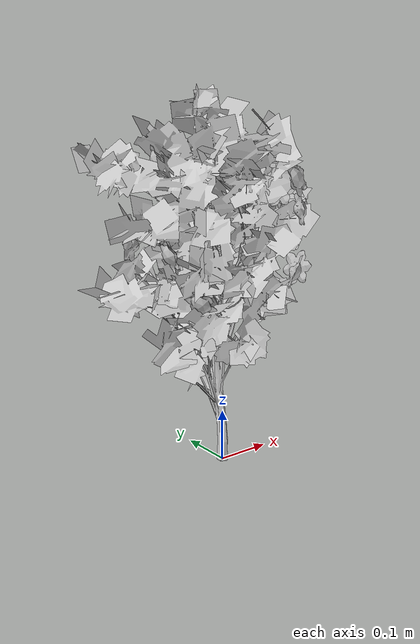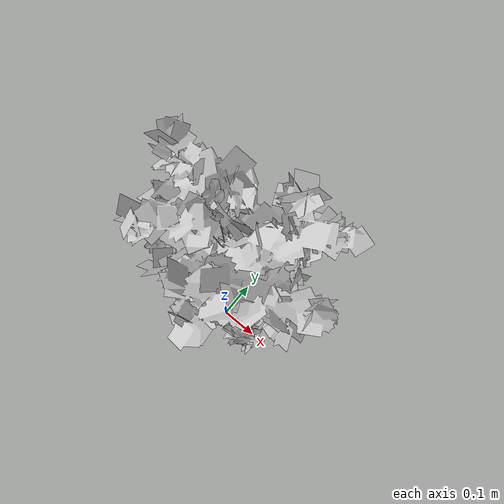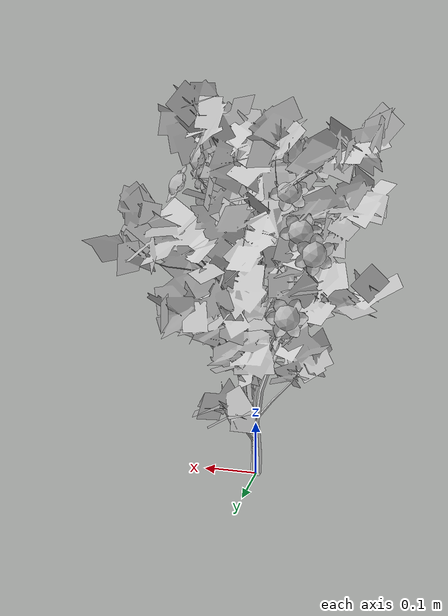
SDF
<?xml version="1.0" ?>
<sdf version="1.6">
  <model name="tree-flowers">
    <!--Skew-Seed:1404525270-->
    <static>true</static>
    <link name="link"/>
    <include>
      <uri>model://tree-mesh</uri>
      <pose>0 0 0 0 0 0</pose>
    </include>
    <joint name="tree_joint" type="fixed">
      <child>tree-mesh::link</child>
      <parent>link</parent>
    </joint>
    <include>
      <name>bramble_0</name>
      <uri>model://bramble</uri>
      <pose> -0.07617848541616994 0.0865904384621728 0.5920966780651129 -2.9251056812645944 1.2553467380782513 0.0</pose>
    </include>
    <joint name="flower_joint_0" type="fixed">
      <child>bramble_0::flower_link</child>
      <parent>link</parent>
    </joint>
    <include>
      <name>bramble_1</name>
      <uri>model://bramble</uri>
      <pose> 0.09458099205756204 -0.03976100906300201 0.5343500792114309 -0.20012890288490015 2.117605020189393 0.0</pose>
    </include>
    <joint name="flower_joint_1" type="fixed">
      <child>bramble_1::flower_link</child>
      <parent>link</parent>
    </joint>
    <include>
      <name>bramble_2</name>
      <uri>model://bramble</uri>
      <pose> 0.11022438083590702 -0.07235021659724623 0.4986998895123038 0.43509835049477374 1.4533730872471131 0.0</pose>
    </include>
    <joint name="flower_joint_2" type="fixed">
      <child>bramble_2::flower_link</child>
      <parent>link</parent>
    </joint>
    <include>
      <name>bramble_3</name>
      <uri>model://bramble</uri>
      <pose> 0.10775524854231835 -0.0654566679356677 0.5554203105590652 0.9334977666668114 0.8292664119905093 0.0</pose>
    </include>
    <joint name="flower_joint_3" type="fixed">
      <child>bramble_3::flower_link</child>
      <parent>link</parent>
    </joint>
    <include>
      <name>bramble_4</name>
      <uri>model://bramble</uri>
      <pose> -0.05622106638442294 -0.0481428354620802 0.41623028423168607 -3.285390076243852 0.9002269312930437 0.0</pose>
    </include>
    <joint name="flower_joint_4" type="fixed">
      <child>bramble_4::flower_link</child>
      <parent>link</parent>
    </joint>
    <include>
      <name>bramble_5</name>
      <uri>model://bramble</uri>
      <pose> 0.10957159504689981 0.08588202358920526 0.46777151172057474 -0.3783600860361569 1.4586939346460615 0.0</pose>
    </include>
    <joint name="flower_joint_5" type="fixed">
      <child>bramble_5::flower_link</child>
      <parent>link</parent>
    </joint>
    <include>
      <name>bramble_6</name>
      <uri>model://bramble</uri>
      <pose> -0.07171513600513273 0.061100485185627 0.5255450691895085 -1.7910503683661874 2.2462306390648887 0.0</pose>
    </include>
    <joint name="flower_joint_6" type="fixed">
      <child>bramble_6::flower_link</child>
      <parent>link</parent>
    </joint>
    <include>
      <name>bramble_7</name>
      <uri>model://bramble</uri>
      <pose> -0.13864242114855563 -0.03297383988090575 0.45843463378102844 -3.0225935761778913 1.2904479472157429 0.0</pose>
    </include>
    <joint name="flower_joint_7" type="fixed">
      <child>bramble_7::flower_link</child>
      <parent>link</parent>
    </joint>
    <include>
      <name>bramble_8</name>
      <uri>model://bramble</uri>
      <pose> 0.060943577512552485 0.1125989872093741 0.576288180844873 -0.48230398636008176 1.3249246606733536 0.0</pose>
    </include>
    <joint name="flower_joint_8" type="fixed">
      <child>bramble_8::flower_link</child>
      <parent>link</parent>
    </joint>
    <include>
      <name>bramble_9</name>
      <uri>model://bramble</uri>
      <pose> 0.07161327426921314 0.09659314949213085 0.32647283752206696 -1.0868372155627983 1.7671746534415274 0.0</pose>
    </include>
    <joint name="flower_joint_9" type="fixed">
      <child>bramble_9::flower_link</child>
      <parent>link</parent>
    </joint>
    <include>
      <name>bramble_10</name>
      <uri>model://bramble</uri>
      <pose> 0.11944397238408075 -0.05920477961931357 0.3805944065576238 -0.13677259246252582 1.9373553387013618 0.0</pose>
    </include>
    <joint name="flower_joint_10" type="fixed">
      <child>bramble_10::flower_link</child>
      <parent>link</parent>
    </joint>
    <include>
      <name>bramble_11</name>
      <uri>model://bramble</uri>
      <pose> 0.06273309308538436 -0.03548898442722637 0.3726791355445811 1.1766412203815704 1.8530253079851928 0.0</pose>
    </include>
    <joint name="flower_joint_11" type="fixed">
      <child>bramble_11::flower_link</child>
      <parent>link</parent>
    </joint>
    <include>
      <name>bramble_12</name>
      <uri>model://bramble</uri>
      <pose> -0.07975629727029043 0.11993371440934059 0.3262506482243923 -1.8007066611637779 2.0320060180763515 0.0</pose>
    </include>
    <joint name="flower_joint_12" type="fixed">
      <child>bramble_12::flower_link</child>
      <parent>link</parent>
    </joint>
    <include>
      <name>bramble_13</name>
      <uri>model://bramble</uri>
      <pose> 0.11679083990281908 -0.055511842833949235 0.37505611230968355 0.7665419996359921 2.0682763191089366 0.0</pose>
    </include>
    <joint name="flower_joint_13" type="fixed">
      <child>bramble_13::flower_link</child>
      <parent>link</parent>
    </joint>
    <include>
      <name>bramble_14</name>
      <uri>model://bramble</uri>
      <pose> -0.07482700729868087 -0.03612064803243073 0.35379246256695646 -3.516253747694787 1.0660336421576442 0.0</pose>
    </include>
    <joint name="flower_joint_14" type="fixed">
      <child>bramble_14::flower_link</child>
      <parent>link</parent>
    </joint>
    <include>
      <name>bramble_15</name>
      <uri>model://bramble</uri>
      <pose> 0.09619047805745984 0.11561262515913248 0.5338993878910658 -0.5770789413324 0.9949141515753543 0.0</pose>
    </include>
    <joint name="flower_joint_15" type="fixed">
      <child>bramble_15::flower_link</child>
      <parent>link</parent>
    </joint>
    <include>
      <name>bramble_16</name>
      <uri>model://bramble</uri>
      <pose> -0.09200027006459945 0.07118317518650016 0.4612005900705244 -1.8372443111067225 1.088348489453819 0.0</pose>
    </include>
    <joint name="flower_joint_16" type="fixed">
      <child>bramble_16::flower_link</child>
      <parent>link</parent>
    </joint>
    <include>
      <name>bramble_17</name>
      <uri>model://bramble</uri>
      <pose> -0.11844244137233398 0.1118202916056963 0.42802195510600594 -2.0954362438170144 1.4111880513027943 0.0</pose>
    </include>
    <joint name="flower_joint_17" type="fixed">
      <child>bramble_17::flower_link</child>
      <parent>link</parent>
    </joint>
  </model>
</sdf>

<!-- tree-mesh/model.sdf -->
<sdf version="1.6">
  <model name="tree-mesh">
    <static>true</static>
    <link name="link">

      <collision name="collision">
        <geometry>
          <mesh>
            <uri>model://tree-mesh/meshes/new_tree.dae</uri>
            <scale>0.0625 0.0625 0.0625</scale>
          </mesh>
        </geometry>
      </collision>

      <!-- simplified collision for sake of speed since leaves shouldn't be blocking anyway -->

      <visual name="leaves">
        <geometry>
          <mesh>
            <uri>model://tree-mesh/meshes/leaves.dae</uri>
            <scale>0.0325 0.0325 0.0325</scale>
          </mesh>
        </geometry>
        <material>
          <script>
            <uri>model://tree-mesh/materials/scripts/</uri>
            <uri>model://tree-mesh/materials/textures/</uri>
            <name>NewTree/Branch</name>
          </script>
        </material>
      </visual>
      <visual name="bark">
        <geometry>
          <mesh>
            <uri>model://tree-mesh/meshes/bark.dae</uri>
            <scale>0.0325 0.0325 0.0325</scale>
          </mesh>
        </geometry>
        <material>
          <script>
            <uri>model://tree-mesh/materials/scripts/</uri>
            <uri>model://tree-mesh/materials/textures/</uri>
            <name>NewTree/Bark</name>
          </script>
        </material>
      </visual>
    </link>
  </model>
</sdf>

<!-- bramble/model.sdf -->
<sdf version="1.6">
  <model name="bramble-flower">
    <static>true</static>
    <link name="flower_link">
      <collision name="body_collision">
        <geometry>
          <mesh>
            <uri>model://bramble/meshes/bramble.dae</uri>
            <scale>0.4 0.4 0.4</scale>
          </mesh>
        </geometry>
      </collision>
      <visual name="petals">
        <geometry>
          <mesh>
            <uri>model://bramble/meshes/bramble.dae</uri>
            <scale>0.4 0.4 0.4</scale>
            <submesh>
              <name>petal</name>
            </submesh>
          </mesh>
        </geometry>
        <material>
          <script>
            <uri>model://bramble/materials/scripts/</uri>
            <uri>model://bramble/materials/textures/</uri>
            <name>Bramble/Petal</name>
          </script>
        </material>
      </visual>
      <visual name="carpel">
        <geometry>
          <mesh>
            <uri>model://bramble/meshes/bramble.dae</uri>
            <scale>0.4 0.4 0.4</scale>
            <submesh>
              <name>carpel</name>
            </submesh>
          </mesh>
        </geometry>
        <material>
          <script>
            <uri>model://bramble/materials/scripts/</uri>
            <uri>model://bramble/materials/textures/</uri>
            <name>Bramble/Carpel</name>
          </script>
        </material>
      </visual>
      <visual name="stamen">
        <geometry>
          <mesh>
            <uri>model://bramble/meshes/bramble.dae</uri>
            <scale>0.4 0.4 0.4</scale>
            <submesh>
              <name>stamen</name>
            </submesh>
          </mesh>
        </geometry>
        <material>
          <script>
            <uri>model://bramble/materials/scripts/</uri>
            <uri>model://bramble/materials/textures/</uri>
            <name>Bramble/Stamen</name>
          </script>
        </material>
      </visual>
    </link>
  </model>
</sdf>
